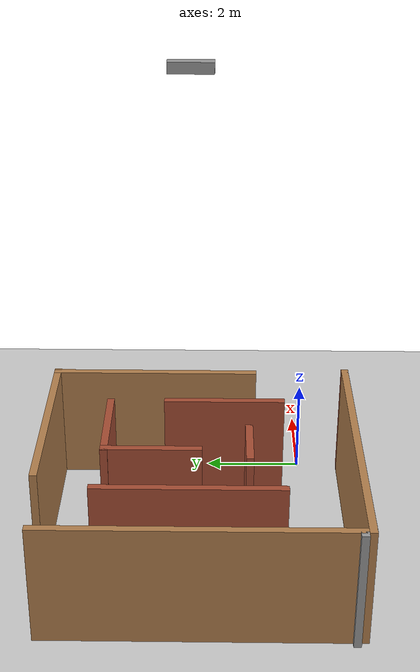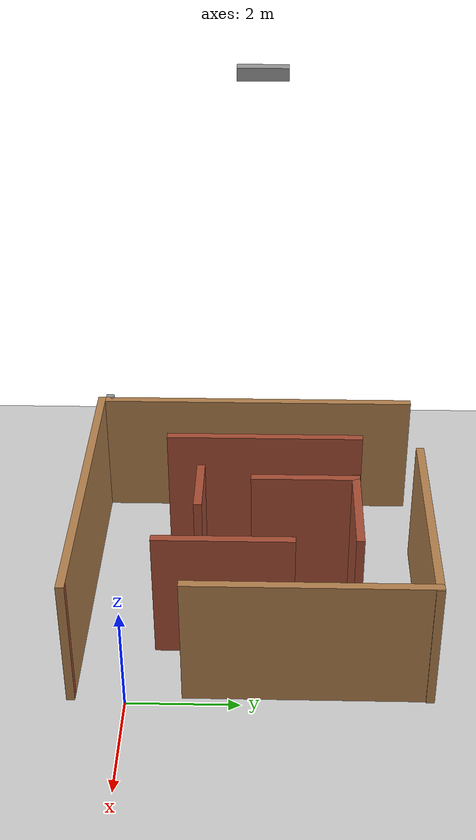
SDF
<sdf version="1.7">
 <world name="default">
  <light name="sun" type="directional">
   <pose>0 0 10 0 -0 0</pose>
   <diffuse>0.8 0.8 0.8 1</diffuse>
   <specular>0.2 0.2 0.2 1</specular>
   <attenuation>
    <range>1000</range>
    <constant>0.9</constant>
    <linear>0.01</linear>
    <quadratic>0.001</quadratic>
   </attenuation>
   <direction>-0.5 0.1 -0.9</direction>
   <spot><inner_angle>0</inner_angle><outer_angle>0</outer_angle><falloff>0</falloff></spot>
  </light>
  <model name="ground_plane">
   <static>1</static>
   <link name="link">
    <collision name="collision">
     <geometry><plane><normal>0 0 1</normal><size>100 100</size></plane></geometry>
     <surface><friction><ode><mu>100</mu><mu2>50</mu2></ode></friction></surface>
    </collision>
    <visual name="visual">
     <cast_shadows>0</cast_shadows>
     <geometry><plane><normal>0 0 1</normal><size>100 100</size></plane></geometry>
     <material>
      <script><uri>file://media/materials/scripts/gazebo.material</uri><name>Gazebo/Grey</name></script>
     </material>
    </visual>
   </link>
  </model>
  <gravity>0 0 -9.8</gravity>
  <magnetic_field>6e-06 2.3e-05 -4.2e-05</magnetic_field>
  <atmosphere type="adiabatic"/>
  <physics type="ode">
   <max_step_size>0.001</max_step_size>
   <real_time_factor>1</real_time_factor>
   <real_time_update_rate>1000</real_time_update_rate>
  </physics>
  <scene><ambient>0.4 0.4 0.4 1</ambient><background>0.7 0.7 0.7 1</background><shadows>1</shadows></scene>
  <spherical_coordinates>
   <surface_model>EARTH_WGS84</surface_model>
   <latitude_deg>0</latitude_deg>
   <longitude_deg>0</longitude_deg>
   <elevation>0</elevation>
   <heading_deg>0</heading_deg>
  </spherical_coordinates>
  <model name="small_maze">
   <pose>-3.04915 2.16492 0 0 -0 0</pose>
   <link name="Wall_23">
    <collision name="Wall_23_Collision">
     <geometry><box><size>0.15 0.15 2.5</size></box></geometry>
     <pose>0 0 1.25 0 -0 0</pose>
    </collision>
    <visual name="Wall_23_Visual">
     <pose>0 0 1.25 0 -0 0</pose>
     <geometry><box><size>0.15 0.15 2.5</size></box></geometry>
     <material>
      <script><uri>file://media/materials/scripts/gazebo.material</uri><name>Gazebo/Grey</name></script>
      <ambient>1 1 1 1</ambient>
     </material>
     <meta><layer>0</layer></meta>
    </visual>
    <pose>-3.04789 -2.9604 0 0 -0 0</pose>
   </link>
   <link name="Wall_30">
    <collision name="Wall_30_Collision">
     <geometry><box><size>0.15 0.15 2.5</size></box></geometry>
     <pose>0 0 1.25 0 -0 0</pose>
    </collision>
    <visual name="Wall_30_Visual">
     <pose>0 0 1.25 0 -0 0</pose>
     <geometry><box><size>0.15 0.15 2.5</size></box></geometry>
     <material>
      <script><uri>file://media/materials/scripts/gazebo.material</uri><name>Gazebo/Bricks</name></script>
      <ambient>1 1 1 1</ambient>
     </material>
     <meta><layer>0</layer></meta>
    </visual>
    <pose>2.90661 -3.11322 0 0 -0 0</pose>
   </link>
   <link name="Wall_35">
    <collision name="Wall_35_Collision">
     <geometry><box><size>4.37137 0.15 2.5</size></box></geometry>
     <pose>0 0 1.25 0 -0 0</pose>
    </collision>
    <visual name="Wall_35_Visual">
     <pose>0 0 1.25 0 -0 0</pose>
     <geometry><box><size>4.37137 0.15 2.5</size></box></geometry>
     <material>
      <script><uri>file://media/materials/scripts/gazebo.material</uri><name>Gazebo/Wood</name></script>
      <ambient>1 1 1 1</ambient>
     </material>
     <meta><layer>0</layer></meta>
    </visual>
    <pose>2.82671 0.996626 0 0 -0 -1.57162</pose>
   </link>
   <link name="Wall_38">
    <collision name="Wall_38_Collision">
     <geometry><box><size>4.21535 0.15 2.5</size></box></geometry>
     <pose>0 0 1.25 0 -0 0</pose>
    </collision>
    <visual name="Wall_38_Visual">
     <pose>0 0 1.25 0 -0 0</pose>
     <geometry><box><size>4.21535 0.15 2.5</size></box></geometry>
     <material>
      <script><uri>file://media/materials/scripts/gazebo.material</uri><name>Gazebo/Wood</name></script>
      <ambient>1 1 1 1</ambient>
     </material>
     <meta><layer>0</layer></meta>
    </visual>
    <pose>0.818898 3.11021 0 0 -0 3.14017</pose>
   </link>
   <link name="Wall_41">
    <collision name="Wall_41_Collision">
     <geometry><box><size>2 0.15 2.5</size></box></geometry>
     <pose>0 0 1.25 0 -0 0</pose>
    </collision>
    <visual name="Wall_41_Visual">
     <pose>0 0 1.25 0 -0 0</pose>
     <geometry><box><size>2 0.15 2.5</size></box></geometry>
     <material>
      <script><uri>file://media/materials/scripts/gazebo.material</uri><name>Gazebo/Bricks</name></script>
      <ambient>1 1 1 1</ambient>
     </material>
     <meta><layer>0</layer></meta>
    </visual>
    <pose>0.634797 1.86226 0 0 -0 3.14159</pose>
   </link>
   <link name="Wall_42">
    <collision name="Wall_42_Collision">
     <geometry><box><size>2 0.15 2.5</size></box></geometry>
     <pose>0 0 1.25 0 -0 0</pose>
    </collision>
    <visual name="Wall_42_Visual">
     <pose>0 0 1.25 0 -0 0</pose>
     <geometry><box><size>2 0.15 2.5</size></box></geometry>
     <material>
      <script><uri>file://media/materials/scripts/gazebo.material</uri><name>Gazebo/Bricks</name></script>
      <ambient>1 1 1 1</ambient>
     </material>
     <meta><layer>0</layer></meta>
    </visual>
    <pose>-0.272409 0.937264 0 0 -0 -1.5708</pose>
   </link>
   <link name="Wall_44">
    <collision name="Wall_44_Collision">
     <geometry><box><size>3.75 0.15 2.5</size></box></geometry>
     <pose>0 0 1.25 0 -0 0</pose>
    </collision>
    <visual name="Wall_44_Visual">
     <pose>0 0 1.25 0 -0 0</pose>
     <geometry><box><size>3.75 0.15 2.5</size></box></geometry>
     <material>
      <script><uri>file://media/materials/scripts/gazebo.material</uri><name>Gazebo/Bricks</name></script>
      <ambient>1 1 1 1</ambient>
     </material>
     <meta><layer>0</layer></meta>
    </visual>
    <pose>-1.637 0.172295 0 0 -0 -1.5708</pose>
   </link>
   <link name="Wall_46">
    <collision name="Wall_46_Collision">
     <geometry><box><size>2.5 0.15 2.5</size></box></geometry>
     <pose>0 0 1.25 0 -0 0</pose>
    </collision>
    <visual name="Wall_46_Visual">
     <pose>0 0 1.25 0 -0 0</pose>
     <geometry><box><size>2.5 0.15 2.5</size></box></geometry>
     <material>
      <script><uri>file://media/materials/scripts/gazebo.material</uri><name>Gazebo/Bricks</name></script>
      <ambient>1 1 1 1</ambient>
     </material>
     <meta><layer>0</layer></meta>
    </visual>
    <pose>1.6069 -0.500849 0 0 -0 -1.5708</pose>
   </link>
   <link name="Wall_48">
    <collision name="Wall_48_Collision">
     <geometry><box><size>1.25 0.15 2.5</size></box></geometry>
     <pose>0 0 1.25 0 -0 0</pose>
    </collision>
    <visual name="Wall_48_Visual">
     <pose>0 0 1.25 0 -0 0</pose>
     <geometry><box><size>1.25 0.15 2.5</size></box></geometry>
     <material>
      <script><uri>file://media/materials/scripts/gazebo.material</uri><name>Gazebo/Bricks</name></script>
      <ambient>1 1 1 1</ambient>
     </material>
     <meta><layer>0</layer></meta>
    </visual>
    <pose>-0.00567 -0.994136 0 0 -0 0</pose>
   </link>
   <link name="Wall_50">
    <collision name="Wall_50_Collision">
     <geometry><box><size>6 0.15 2.5</size></box></geometry>
     <pose>0 0 1.25 0 -0 0</pose>
    </collision>
    <visual name="Wall_50_Visual">
     <pose>0 0 1.25 0 -0 0</pose>
     <geometry><box><size>6 0.15 2.5</size></box></geometry>
     <material>
      <script><uri>file://media/materials/scripts/gazebo.material</uri><name>Gazebo/Wood</name></script>
      <ambient>1 1 1 1</ambient>
     </material>
     <meta><layer>0</layer></meta>
    </visual>
    <pose>-0.018385 -3.11322 0 0 -0 3.14159</pose>
   </link>
   <link name="Wall_51">
    <collision name="Wall_51_Collision">
     <geometry><box><size>6.25 0.15 2.5</size></box></geometry>
     <pose>0 0 1.25 0 -0 0</pose>
    </collision>
    <visual name="Wall_51_Visual">
     <pose>0 0 1.25 0 -0 0</pose>
     <geometry><box><size>6.25 0.15 2.5</size></box></geometry>
     <material>
      <script><uri>file://media/materials/scripts/gazebo.material</uri><name>Gazebo/Wood</name></script>
      <ambient>1 1 1 1</ambient>
     </material>
     <meta><layer>0</layer></meta>
    </visual>
    <pose>-2.94339 -0.063222 0 0 -0 1.5708</pose>
   </link>
   <static>1</static>
  </model>
  <model name="Untitled">
   <link name="link_0">
    <inertial>
     <mass>1</mass>
     <inertia>
      <ixx>0.166667</ixx>
      <ixy>0</ixy>
      <ixz>0</ixz>
      <iyy>0.166667</iyy>
      <iyz>0</iyz>
      <izz>0.166667</izz>
     </inertia>
    </inertial>
    <pose>1e-06 1e-06 -2.7e-05 0 -0 1.5643</pose>
    <visual name="visual">
     <geometry><box><size>0.8 0.2 0.2</size></box></geometry>
     <material>
      <lighting>1</lighting>
      <script><uri>file://media/materials/scripts/gazebo.material</uri><name>Gazebo/Grey</name></script>
      <shader type="pixel"><normal_map>__default__</normal_map></shader>
      <ambient>0.3 0.3 0.3 1</ambient>
      <diffuse>0.7 0.7 0.7 1</diffuse>
      <specular>0.01 0.01 0.01 1</specular>
      <emissive>0 0 0 1</emissive>
     </material>
    </visual>
    <collision name="collision">
     <geometry><box><size>0.8 0.2 0.2</size></box></geometry>
     <surface>
      <friction>
       <ode><mu>1</mu><mu2>1</mu2><fdir1>0 0 0</fdir1><slip1>0</slip1><slip2>0</slip2></ode>
       <torsional>
        <coefficient>1</coefficient>
        <patch_radius>0</patch_radius>
        <surface_radius>0</surface_radius>
        <use_patch_radius>1</use_patch_radius>
        <ode><slip>0</slip></ode>
       </torsional>
      </friction>
      <bounce><restitution_coefficient>0</restitution_coefficient><threshold>1e+06</threshold></bounce>
      <contact>
       <collide_without_contact>0</collide_without_contact>
       <collide_without_contact_bitmask>1</collide_without_contact_bitmask>
       <collide_bitmask>1</collide_bitmask>
       <ode>
        <soft_cfm>0</soft_cfm>
        <soft_erp>0.2</soft_erp>
        <kp>1e+13</kp>
        <kd>1</kd>
        <max_vel>0.01</max_vel>
        <min_depth>0</min_depth>
       </ode>
       <bullet>
        <split_impulse>1</split_impulse>
        <split_impulse_penetration_threshold>-0.01</split_impulse_penetration_threshold>
        <soft_cfm>0</soft_cfm>
        <soft_erp>0.2</soft_erp>
        <kp>1e+13</kp>
        <kd>1</kd>
       </bullet>
      </contact>
     </surface>
    </collision>
    <sensor type="camera" name="cameraa">
     <pose>0.0 0.0 0.0 0 1.57 0</pose>
     <update_rate>30.0</update_rate>
     <visualize>true</visualize>
     <camera name="head">
      <horizontal_fov>1.3962634</horizontal_fov>
      <image><width>800</width><height>800</height><format>R8G8B8</format></image>
      <clip><near>0.02</near><far>300</far></clip>
      <noise><type>gaussian</type><mean>0.0</mean><stddev>0.007</stddev></noise>
     </camera>
     <plugin name="camera_controller" filename="libgazebo_ros_camera.so">
      <alwaysOn>true</alwaysOn>
      <updateRate>0.0</updateRate>
      <cameraName>rrbot/camera1</cameraName>
      <imageTopicName>image_raw</imageTopicName>
      <cameraInfoTopicName>camera_info</cameraInfoTopicName>
      <frameName>camera_link</frameName>
      <hackBaseline>0.07</hackBaseline>
      <distortionK1>0.0</distortionK1>
      <distortionK2>0.0</distortionK2>
      <distortionK3>0.0</distortionK3>
      <distortionT1>0.0</distortionT1>
      <distortionT2>0.0</distortionT2>
     </plugin>
    </sensor>
   </link>
   <static>1</static>
   <pose>-3.32493 2.2967 9.96268 0 -0 0</pose>
  </model>
 </world>
</sdf>
